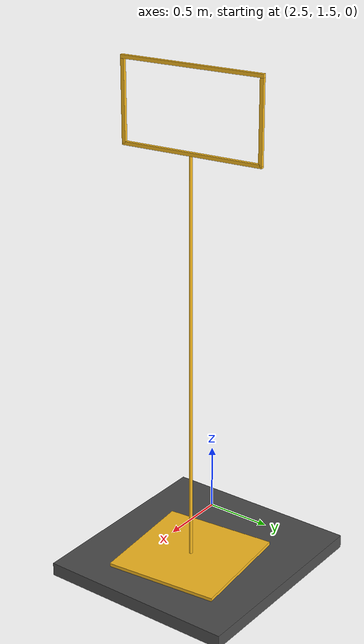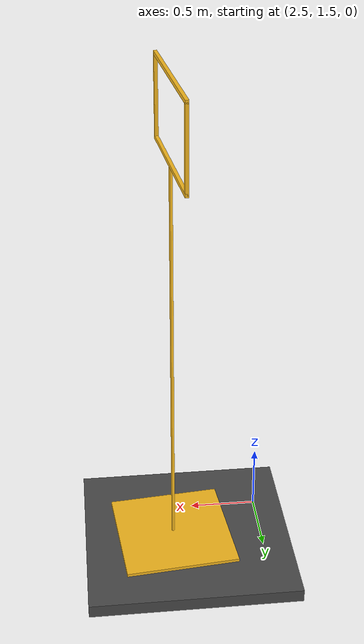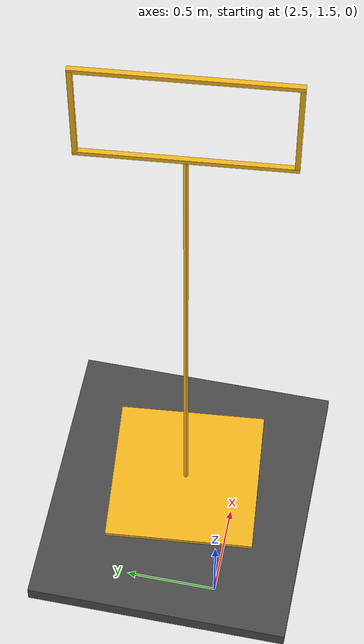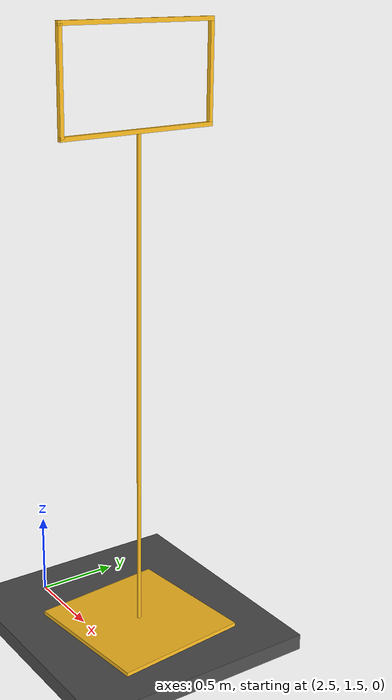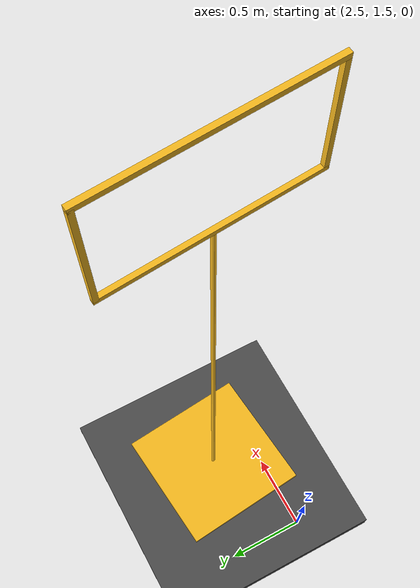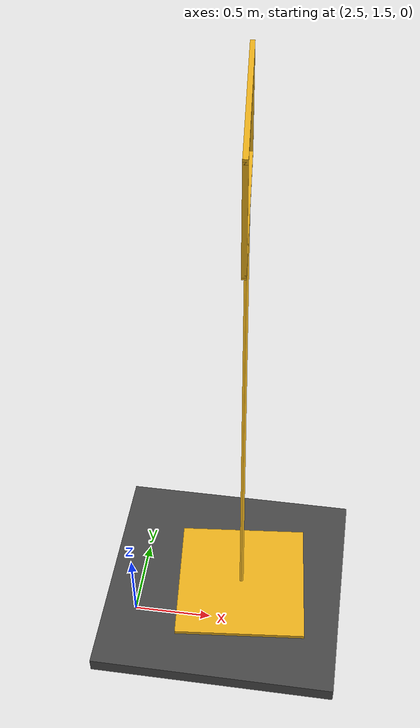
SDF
<sdf version="1.6">
 <world name="default">
  <model name="ground_plane">
   <static>1</static>
   <link name="link">
    <collision name="collision">
     <geometry><plane><normal>0 0 1</normal><size>100 100</size></plane></geometry>
     <surface>
      <contact><collide_bitmask>65535</collide_bitmask></contact>
      <friction><ode><mu>100</mu><mu2>50</mu2></ode></friction>
     </surface>
    </collision>
    <visual name="visual">
     <cast_shadows>0</cast_shadows>
     <geometry><plane><normal>0 0 1</normal><size>100 100</size></plane></geometry>
     <material>
      <script><uri>file://media/materials/scripts/gazebo.material</uri><name>Gazebo/Grey</name></script>
     </material>
    </visual>
   </link>
  </model>
  <model name="asphalt_plane">
   <static>1</static>
   <link name="link">
    <collision name="collision"><geometry><box><size>200 200 0.1</size></box></geometry></collision>
    <visual name="visual">
     <cast_shadows>0</cast_shadows>
     <geometry><box><size>200 200 0.1</size></box></geometry>
     <material>
      <script>
       <uri>model://asphalt_plane/materials/scripts</uri>
       <uri>model://asphalt_plane/materials/textures</uri>
       <name>vrc/asphalt</name>
      </script>
     </material>
    </visual>
   </link>
   <pose>0.01712 -0.014989 -0.049 0 -0 0</pose>
  </model>
  <model name="Gate_clone">
   <link name="link_2">
    <inertial>
     <mass>1</mass>
     <inertia>
      <ixx>0.166667</ixx>
      <ixy>0</ixy>
      <ixz>0</ixz>
      <iyy>0.166667</iyy>
      <iyz>0</iyz>
      <izz>0.166667</izz>
     </inertia>
     <pose>0 0 0.0125 0 -0 0</pose>
    </inertial>
    <pose>-0 -0 0.0125 0 -0 0</pose>
    <visual name="visual">
     <geometry><box><size>0.85 0.85 0.025</size></box></geometry>
     <material>
      <lighting>1</lighting>
      <script><uri>file://media/materials/scripts/gazebo.material</uri><name>Gazebo/Grey</name></script>
      <shader type="pixel"><normal_map>__default__</normal_map></shader>
      <ambient>0.988 0.741 0.122 1</ambient>
      <diffuse>0.988 0.741 0.122 1</diffuse>
      <specular>0.988 0.741 0.122 1</specular>
      <emissive>0 0 0 1</emissive>
     </material>
    </visual>
    <collision name="collision">
     <geometry><box><size>0.85 0.85 0.025</size></box></geometry>
     <surface>
      <friction>
       <ode><mu>1</mu><mu2>1</mu2><fdir1>0 0 0</fdir1><slip1>0</slip1><slip2>0</slip2></ode>
       <torsional>
        <coefficient>1</coefficient>
        <patch_radius>0</patch_radius>
        <surface_radius>0</surface_radius>
        <use_patch_radius>1</use_patch_radius>
        <ode><slip>0</slip></ode>
       </torsional>
      </friction>
      <bounce><restitution_coefficient>0</restitution_coefficient><threshold>1e+06</threshold></bounce>
      <contact>
       <collide_without_contact>0</collide_without_contact>
       <collide_without_contact_bitmask>1</collide_without_contact_bitmask>
       <collide_bitmask>1</collide_bitmask>
       <ode>
        <soft_cfm>0</soft_cfm>
        <soft_erp>0.2</soft_erp>
        <kp>1e+13</kp>
        <kd>1</kd>
        <max_vel>0.01</max_vel>
        <min_depth>0</min_depth>
       </ode>
       <bullet>
        <split_impulse>1</split_impulse>
        <split_impulse_penetration_threshold>-0.01</split_impulse_penetration_threshold>
        <soft_cfm>0</soft_cfm>
        <soft_erp>0.2</soft_erp>
        <kp>1e+13</kp>
        <kd>1</kd>
       </bullet>
      </contact>
     </surface>
    </collision>
   </link>
   <link name="link_3">
    <inertial>
     <mass>0.00444894</mass>
     <inertia>
      <ixx>0.00033485</ixx>
      <ixy>0</ixy>
      <ixz>0</ixz>
      <iyy>0.00033485</iyy>
      <iyz>0</iyz>
      <izz>2.61e-06</izz>
     </inertia>
     <pose>0 0 1.525 0 -0 0</pose>
    </inertial>
    <pose>0 0 1.525 0 -0 0</pose>
    <visual name="visual">
     <geometry><cylinder><radius>0.0125</radius><length>3.025</length></cylinder></geometry>
     <material>
      <lighting>1</lighting>
      <script><uri>file://media/materials/scripts/gazebo.material</uri><name>Gazebo/Grey</name></script>
      <shader type="pixel"><normal_map>__default__</normal_map></shader>
      <ambient>0.988 0.741 0.122 1</ambient>
      <diffuse>0.988 0.741 0.122 1</diffuse>
      <specular>0.988 0.741 0.122 1</specular>
      <emissive>0 0 0 1</emissive>
     </material>
    </visual>
    <collision name="collision">
     <geometry><cylinder><radius>0.0125</radius><length>3.025</length></cylinder></geometry>
     <surface>
      <friction>
       <ode><mu>1</mu><mu2>1</mu2><fdir1>0 0 0</fdir1><slip1>0</slip1><slip2>0</slip2></ode>
       <torsional>
        <coefficient>1</coefficient>
        <patch_radius>0</patch_radius>
        <surface_radius>0</surface_radius>
        <use_patch_radius>1</use_patch_radius>
        <ode><slip>0</slip></ode>
       </torsional>
      </friction>
      <bounce><restitution_coefficient>0</restitution_coefficient><threshold>1e+06</threshold></bounce>
      <contact>
       <collide_without_contact>0</collide_without_contact>
       <collide_without_contact_bitmask>1</collide_without_contact_bitmask>
       <collide_bitmask>1</collide_bitmask>
       <ode>
        <soft_cfm>0</soft_cfm>
        <soft_erp>0.2</soft_erp>
        <kp>1e+13</kp>
        <kd>1</kd>
        <max_vel>0.01</max_vel>
        <min_depth>0</min_depth>
       </ode>
       <bullet>
        <split_impulse>1</split_impulse>
        <split_impulse_penetration_threshold>-0.01</split_impulse_penetration_threshold>
        <soft_cfm>0</soft_cfm>
        <soft_erp>0.2</soft_erp>
        <kp>1e+13</kp>
        <kd>1</kd>
       </bullet>
      </contact>
     </surface>
    </collision>
   </link>
   <link name="link_5">
    <inertial>
     <mass>1</mass>
     <inertia>
      <ixx>0.166667</ixx>
      <ixy>0</ixy>
      <ixz>0</ixz>
      <iyy>0.166667</iyy>
      <iyz>0</iyz>
      <izz>0.166667</izz>
     </inertia>
     <pose>0 0 3.0375 0 -0 0</pose>
    </inertial>
    <pose>0 0 3.0375 0 -0 0</pose>
    <visual name="visual">
     <geometry><box><size>0.025 1.05 0.025</size></box></geometry>
     <material>
      <lighting>1</lighting>
      <script><uri>file://media/materials/scripts/gazebo.material</uri><name>Gazebo/Grey</name></script>
      <shader type="pixel"><normal_map>__default__</normal_map></shader>
      <ambient>0.988 0.741 0.122 1</ambient>
      <diffuse>0.988 0.741 0.122 1</diffuse>
      <specular>0.988 0.741 0.122 1</specular>
      <emissive>0 0 0 1</emissive>
     </material>
    </visual>
    <collision name="collision">
     <geometry><box><size>0.025 1.05 0.025</size></box></geometry>
     <surface>
      <friction>
       <ode><mu>1</mu><mu2>1</mu2><fdir1>0 0 0</fdir1><slip1>0</slip1><slip2>0</slip2></ode>
       <torsional>
        <coefficient>1</coefficient>
        <patch_radius>0</patch_radius>
        <surface_radius>0</surface_radius>
        <use_patch_radius>1</use_patch_radius>
        <ode><slip>0</slip></ode>
       </torsional>
      </friction>
      <bounce><restitution_coefficient>0</restitution_coefficient><threshold>1e+06</threshold></bounce>
      <contact>
       <collide_without_contact>0</collide_without_contact>
       <collide_without_contact_bitmask>1</collide_without_contact_bitmask>
       <collide_bitmask>1</collide_bitmask>
       <ode>
        <soft_cfm>0</soft_cfm>
        <soft_erp>0.2</soft_erp>
        <kp>1e+13</kp>
        <kd>1</kd>
        <max_vel>0.01</max_vel>
        <min_depth>0</min_depth>
       </ode>
       <bullet>
        <split_impulse>1</split_impulse>
        <split_impulse_penetration_threshold>-0.01</split_impulse_penetration_threshold>
        <soft_cfm>0</soft_cfm>
        <soft_erp>0.2</soft_erp>
        <kp>1e+13</kp>
        <kd>1</kd>
       </bullet>
      </contact>
     </surface>
    </collision>
   </link>
   <link name="link_5_clone">
    <inertial>
     <mass>1</mass>
     <inertia>
      <ixx>0.166667</ixx>
      <ixy>0</ixy>
      <ixz>0</ixz>
      <iyy>0.166667</iyy>
      <iyz>0</iyz>
      <izz>0.166667</izz>
     </inertia>
     <pose>0 0 3.6125 0 -0 0</pose>
    </inertial>
    <pose>-0 0 3.6125 0 -0 0</pose>
    <visual name="visual">
     <geometry><box><size>0.025 1.05 0.025</size></box></geometry>
     <material>
      <lighting>1</lighting>
      <script><uri>file://media/materials/scripts/gazebo.material</uri><name>Gazebo/Grey</name></script>
      <shader type="pixel"><normal_map>__default__</normal_map></shader>
      <ambient>0.988 0.741 0.122 1</ambient>
      <diffuse>0.988 0.741 0.122 1</diffuse>
      <specular>0.988 0.741 0.122 1</specular>
      <emissive>0 0 0 1</emissive>
     </material>
    </visual>
    <collision name="collision">
     <geometry><box><size>0.025 1.05 0.025</size></box></geometry>
     <surface>
      <friction>
       <ode><mu>1</mu><mu2>1</mu2><fdir1>0 0 0</fdir1><slip1>0</slip1><slip2>0</slip2></ode>
       <torsional>
        <coefficient>1</coefficient>
        <patch_radius>0</patch_radius>
        <surface_radius>0</surface_radius>
        <use_patch_radius>1</use_patch_radius>
        <ode><slip>0</slip></ode>
       </torsional>
      </friction>
      <bounce><restitution_coefficient>0</restitution_coefficient><threshold>1e+06</threshold></bounce>
      <contact>
       <collide_without_contact>0</collide_without_contact>
       <collide_without_contact_bitmask>1</collide_without_contact_bitmask>
       <collide_bitmask>1</collide_bitmask>
       <ode>
        <soft_cfm>0</soft_cfm>
        <soft_erp>0.2</soft_erp>
        <kp>1e+13</kp>
        <kd>1</kd>
        <max_vel>0.01</max_vel>
        <min_depth>0</min_depth>
       </ode>
       <bullet>
        <split_impulse>1</split_impulse>
        <split_impulse_penetration_threshold>-0.01</split_impulse_penetration_threshold>
        <soft_cfm>0</soft_cfm>
        <soft_erp>0.2</soft_erp>
        <kp>1e+13</kp>
        <kd>1</kd>
       </bullet>
      </contact>
     </surface>
    </collision>
   </link>
   <link name="link_6">
    <inertial>
     <mass>1</mass>
     <inertia>
      <ixx>0.166667</ixx>
      <ixy>0</ixy>
      <ixz>0</ixz>
      <iyy>0.166667</iyy>
      <iyz>0</iyz>
      <izz>0.166667</izz>
     </inertia>
     <pose>0 0.5125 3.0375 0 -0 0</pose>
    </inertial>
    <pose>0 0.5125 3.325 0 -0 0</pose>
    <visual name="visual">
     <geometry><box><size>0.025 0.025 0.575</size></box></geometry>
     <material>
      <lighting>1</lighting>
      <script><uri>file://media/materials/scripts/gazebo.material</uri><name>Gazebo/Grey</name></script>
      <shader type="pixel"><normal_map>__default__</normal_map></shader>
      <ambient>0.988 0.741 0.122 1</ambient>
      <diffuse>0.988 0.741 0.122 1</diffuse>
      <specular>0.988 0.741 0.122 1</specular>
      <emissive>0 0 0 1</emissive>
     </material>
    </visual>
    <collision name="collision">
     <geometry><box><size>0.025 0.025 0.575</size></box></geometry>
     <surface>
      <friction>
       <ode><mu>1</mu><mu2>1</mu2><fdir1>0 0 0</fdir1><slip1>0</slip1><slip2>0</slip2></ode>
       <torsional>
        <coefficient>1</coefficient>
        <patch_radius>0</patch_radius>
        <surface_radius>0</surface_radius>
        <use_patch_radius>1</use_patch_radius>
        <ode><slip>0</slip></ode>
       </torsional>
      </friction>
      <bounce><restitution_coefficient>0</restitution_coefficient><threshold>1e+06</threshold></bounce>
      <contact>
       <collide_without_contact>0</collide_without_contact>
       <collide_without_contact_bitmask>1</collide_without_contact_bitmask>
       <collide_bitmask>1</collide_bitmask>
       <ode>
        <soft_cfm>0</soft_cfm>
        <soft_erp>0.2</soft_erp>
        <kp>1e+13</kp>
        <kd>1</kd>
        <max_vel>0.01</max_vel>
        <min_depth>0</min_depth>
       </ode>
       <bullet>
        <split_impulse>1</split_impulse>
        <split_impulse_penetration_threshold>-0.01</split_impulse_penetration_threshold>
        <soft_cfm>0</soft_cfm>
        <soft_erp>0.2</soft_erp>
        <kp>1e+13</kp>
        <kd>1</kd>
       </bullet>
      </contact>
     </surface>
    </collision>
   </link>
   <link name="link_6_clone">
    <inertial>
     <mass>1</mass>
     <inertia>
      <ixx>0.166667</ixx>
      <ixy>0</ixy>
      <ixz>0</ixz>
      <iyy>0.166667</iyy>
      <iyz>0</iyz>
      <izz>0.166667</izz>
     </inertia>
     <pose>0 -0.5125 3.325 0 -0 0</pose>
    </inertial>
    <pose>0 -0.5125 3.325 0 -0 0</pose>
    <visual name="visual">
     <geometry><box><size>0.025 0.025 0.575</size></box></geometry>
     <material>
      <lighting>1</lighting>
      <script><uri>file://media/materials/scripts/gazebo.material</uri><name>Gazebo/Grey</name></script>
      <shader type="pixel"><normal_map>__default__</normal_map></shader>
      <ambient>0.988 0.741 0.122 1</ambient>
      <diffuse>0.988 0.741 0.122 1</diffuse>
      <specular>0.988 0.741 0.122 1</specular>
      <emissive>0 0 0 1</emissive>
     </material>
    </visual>
    <collision name="collision">
     <geometry><box><size>0.025 0.025 0.575</size></box></geometry>
     <surface>
      <friction>
       <ode><mu>1</mu><mu2>1</mu2><fdir1>0 0 0</fdir1><slip1>0</slip1><slip2>0</slip2></ode>
       <torsional>
        <coefficient>1</coefficient>
        <patch_radius>0</patch_radius>
        <surface_radius>0</surface_radius>
        <use_patch_radius>1</use_patch_radius>
        <ode><slip>0</slip></ode>
       </torsional>
      </friction>
      <bounce><restitution_coefficient>0</restitution_coefficient><threshold>1e+06</threshold></bounce>
      <contact>
       <collide_without_contact>0</collide_without_contact>
       <collide_without_contact_bitmask>1</collide_without_contact_bitmask>
       <collide_bitmask>1</collide_bitmask>
       <ode>
        <soft_cfm>0</soft_cfm>
        <soft_erp>0.2</soft_erp>
        <kp>1e+13</kp>
        <kd>1</kd>
        <max_vel>0.01</max_vel>
        <min_depth>0</min_depth>
       </ode>
       <bullet>
        <split_impulse>1</split_impulse>
        <split_impulse_penetration_threshold>-0.01</split_impulse_penetration_threshold>
        <soft_cfm>0</soft_cfm>
        <soft_erp>0.2</soft_erp>
        <kp>1e+13</kp>
        <kd>1</kd>
       </bullet>
      </contact>
     </surface>
    </collision>
   </link>
   <joint name="link_2_JOINT_2" type="fixed">
    <parent>link_2</parent>
    <child>link_3</child>
    <physics>
     <ode><limit><cfm>0</cfm><erp>0.2</erp></limit><suspension><cfm>0</cfm><erp>0.2</erp></suspension></ode>
    </physics>
   </joint>
   <joint name="link_3_JOINT_3" type="fixed">
    <parent>link_3</parent>
    <child>link_5</child>
    <physics>
     <ode><limit><cfm>0</cfm><erp>0.2</erp></limit><suspension><cfm>0</cfm><erp>0.2</erp></suspension></ode>
    </physics>
   </joint>
   <joint name="link_5_JOINT_0" type="fixed">
    <parent>link_5</parent>
    <child>link_6_clone</child>
    <physics>
     <ode><limit><cfm>0</cfm><erp>0.2</erp></limit><suspension><cfm>0</cfm><erp>0.2</erp></suspension></ode>
    </physics>
   </joint>
   <joint name="link_5_JOINT_1" type="fixed">
    <parent>link_5</parent>
    <child>link_6</child>
    <physics>
     <ode><limit><cfm>0</cfm><erp>0.2</erp></limit><suspension><cfm>0</cfm><erp>0.2</erp></suspension></ode>
    </physics>
   </joint>
   <joint name="link_6_JOINT_3" type="fixed">
    <parent>link_6</parent>
    <child>link_5_clone</child>
    <physics>
     <ode><limit><cfm>0</cfm><erp>0.2</erp></limit><suspension><cfm>0</cfm><erp>0.2</erp></suspension></ode>
    </physics>
   </joint>
   <joint name="link_6_clone_JOINT_2" type="fixed">
    <parent>link_6_clone</parent>
    <child>link_5_clone</child>
    <physics>
     <ode><limit><cfm>0</cfm><erp>0.2</erp></limit><suspension><cfm>0</cfm><erp>0.2</erp></suspension></ode>
    </physics>
   </joint>
   <static>0</static>
   <pose>3.17383 1.79966 0.001 0 -0 0.09496</pose>
  </model>
 </world>
</sdf>
